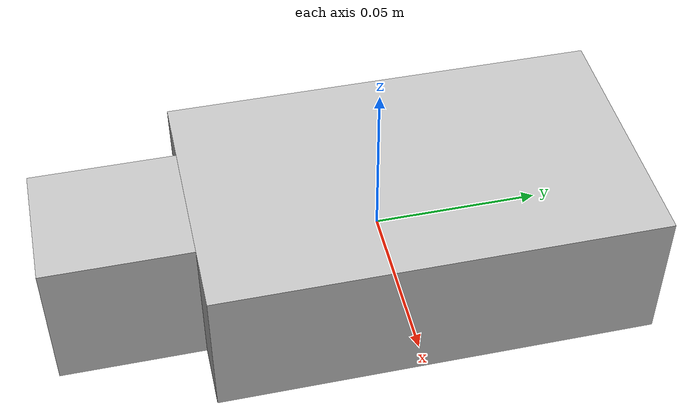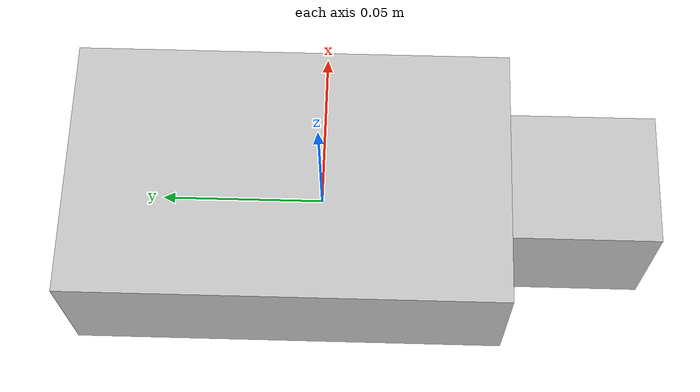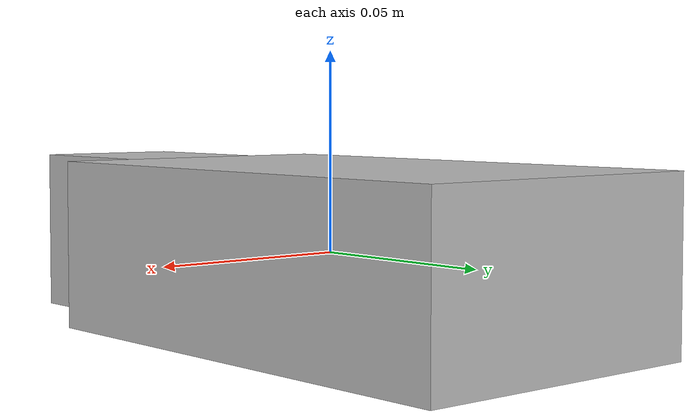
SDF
<?xml version="1.0"?>
<sdf version="1.7">
  <model name="lotion">
    <link name="lotion">
      <inertial>
        <pose>0.000830 -0.002751 0.000184 0 0 0</pose>
        <mass>0.05</mass>
        <inertia>
          <ixx>0.000121664172</ixx>
          <iyy>3.17866168e-05</iyy>
          <izz>0.000137638753</izz>
          <ixy>1.14178205e-07</ixy>
          <ixz>-7.636e-09</ixz>
          <iyz>2.53117949e-08</iyz>
        </inertia>
      </inertial>
      <visual name="box_0">
        <pose>0.000830 0.009800 0.000184 0 0 0.000000</pose>
        <geometry>
          <box><size>0.080000 0.134000 0.043555</size></box>
        </geometry>
        <material>
          <diffuse>0.75 0.75 0.75 1</diffuse>
        </material>
      </visual>
      <collision name="box_0_volume">
        <pose>0.000830 0.009800 0.000184 0 0 0.000000</pose>
        <geometry>
          <box><size>0.080000 0.134000 0.043555</size></box>
        </geometry>
        <drake:proximity_properties>
          <drake:compliant_hydroelastic/>
          <drake:hydroelastic_modulus> 3.0e7 </drake:hydroelastic_modulus>
          <drake:mesh_resolution_hint> 0.02 </drake:mesh_resolution_hint>
          <drake:hunt_crossley_dissipation>10</drake:hunt_crossley_dissipation>
          <drake:mu_dynamic>0.3</drake:mu_dynamic>
        </drake:proximity_properties>
      </collision>
      <visual name="box_1">
        <pose>0.000830 -0.079200 0.000184 0 0 0.000000</pose>
        <geometry>
          <box><size>0.040000 0.044000 0.043555</size></box>
        </geometry>
        <material>
          <diffuse>0.75 0.75 0.75 1</diffuse>
        </material>
      </visual>
      <collision name="box_1_volume">
        <pose>0.000830 -0.079200 0.000184 0 0 0.000000</pose>
        <geometry>
          <box><size>0.040000 0.044000 0.043555</size></box>
        </geometry>
        <drake:proximity_properties>
          <drake:compliant_hydroelastic/>
          <drake:hydroelastic_modulus> 3.0e7 </drake:hydroelastic_modulus>
          <drake:mesh_resolution_hint> 0.02 </drake:mesh_resolution_hint>
          <drake:hunt_crossley_dissipation>10</drake:hunt_crossley_dissipation>
          <drake:mu_dynamic>0.3</drake:mu_dynamic>
        </drake:proximity_properties>
      </collision>
    </link>
  </model>
</sdf>
